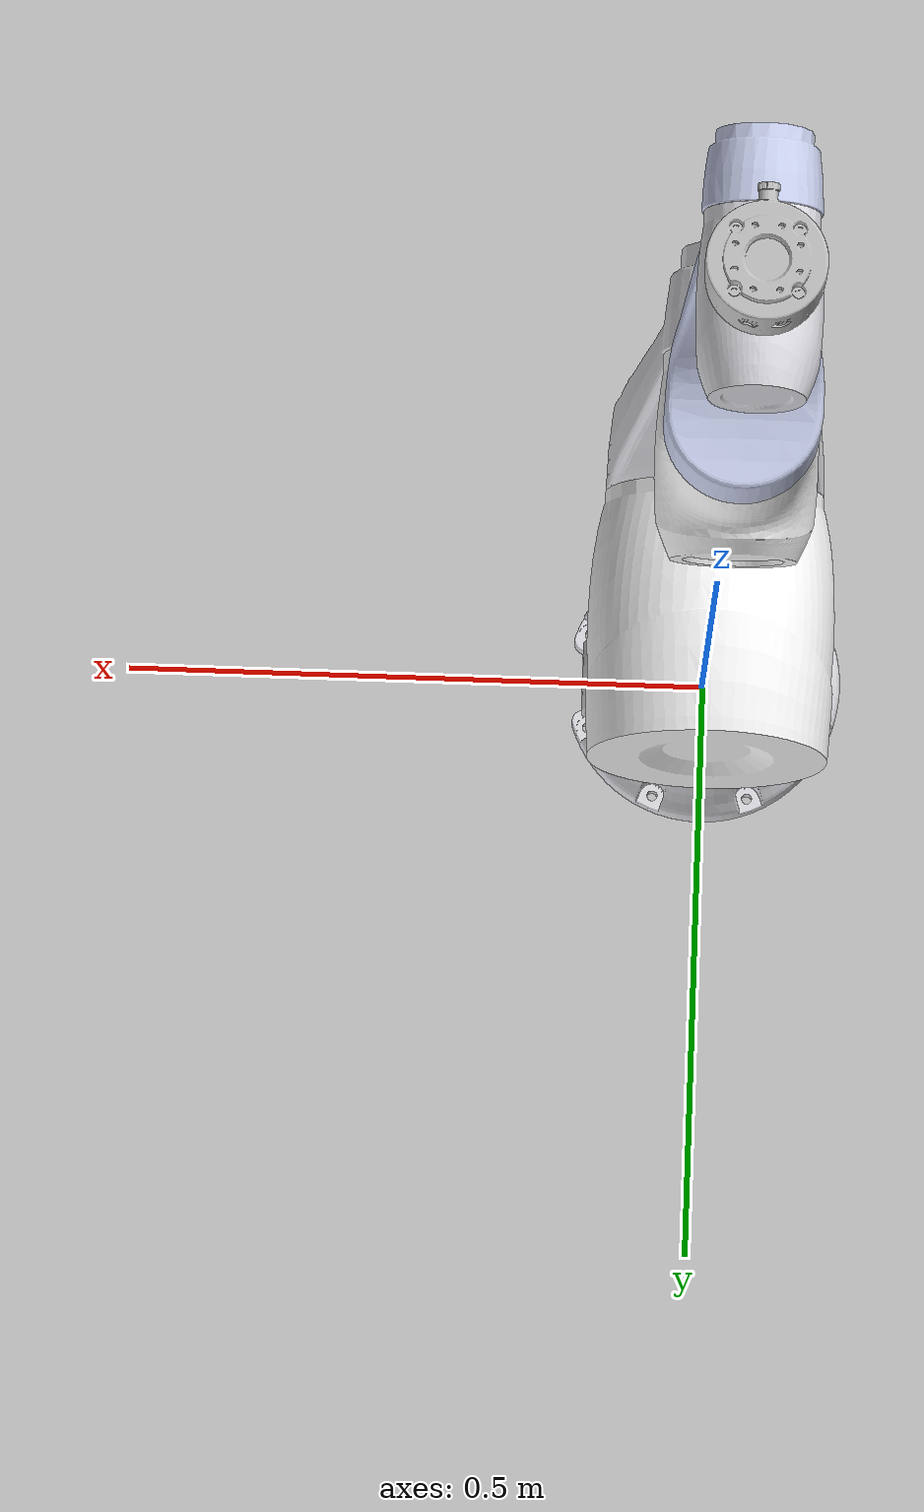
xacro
<?xml version="1.0"?>

<robot name="E15" xmlns:xacro="http://wiki.ros.org/xacro">

  <xacro:arg name="use_real_hardware" default="true" />
  <xacro:arg name="use_fake_hardware" default="false" />

  <!-- Load TRANSMISSION file: -->
  <xacro:include filename="$(find elfin15_ros2_gazebo)/urdf/elfin15_transmission.xacro" />
  <!-- Load GAZEBO/ROS2_CONTROL file: -->
  <xacro:include filename="$(find elfin15_ros2_gazebo)/urdf/elfin15_gazebo.xacro" />

  <xacro:property name="PI" value="3.1415926535897931"/>

  <xacro:property name="density" value="3.09"/>

    <!-- TRANSMISSION: -->
    <xacro:elfin15_transmission />
    <!-- GAZEBO - ROS2_CONTROL: -->
    <xacro:elfin15_gazebo
    use_real_hardware="$(arg use_real_hardware)"
    use_fake_hardware="$(arg use_fake_hardware)"/>

  <link name="world" />

  <joint name="world_base" type="fixed">
    <origin
      xyz="0 0 0"
      rpy="0 0 0" />
    <parent
      link="world" />
    <child
      link="elfin_base_link" />
  </joint>

  <link name="elfin_base_link" />

  <joint name="elfin_base_joint" type="fixed">
    <origin
      xyz="0 0 0"
      rpy="0 0 0" />
    <parent
      link="elfin_base_link" />
    <child
      link="elfin_base" />
  </joint>

 <link
    name="elfin_base">
    <inertial>
      <origin
        xyz="-0.00137018130408533 -2.08409607078139E-06 0.0376538014243397"
        rpy="0 0 0" />
      <mass
        value="2.70257461902285" />
      <inertia
        ixx="0.00938125784352759"
        ixy="-3.1887671545475E-09"
        ixz="-6.8867614840487E-05"
        iyy="0.00898645591278108"
        iyz="-1.99352142230335E-07"
        izz="0.015708544428067" />
    </inertial>
    <visual>
      <origin
        xyz="0 0 0"
        rpy="0 0 0" />
      <geometry>
        <mesh
          filename="file://$(find elfin_description)/meshes/elfin15/elfin_base.STL" />
      </geometry>
      <material
        name="">
        <color
          rgba="0.866666666666667 0.866666666666667 0.890196078431372 1" />
      </material>
    </visual>
    <collision>
      <origin
        xyz="0 0 0"
        rpy="0 0 0" />
      <geometry>
        <mesh
          filename="file://$(find elfin_description)/meshes/elfin15/elfin_base.STL" />
      </geometry>
    </collision>
  </link>
  <link
    name="elfin_link1">
    <inertial>
      <origin
        xyz="8.16871679225712E-06 -0.00327076216928575 -0.0357443582073996"
        rpy="0 0 0" />
      <mass
        value="9.72548992374063" />
      <inertia
        ixx="0.0877898222410778"
        ixy="7.51166191337628E-06"
        ixz="-1.02593778354047E-05"
        iyy="0.0787662782449541"
        iyz="0.00190236579914971"
        izz="0.0591572039539081" />
    </inertial>
    <visual>
      <origin
        xyz="0 0 0"
        rpy="0 0 0" />
      <geometry>
        <mesh
          filename="file://$(find elfin_description)/meshes/elfin15/elfin_link1.STL" />
      </geometry>
      <material
        name="">
        <color
          rgba="1 1 1 1" />
      </material>
    </visual>
    <collision>
      <origin
        xyz="0 0 0"
        rpy="0 0 0" />
      <geometry>
        <mesh
          filename="file://$(find elfin_description)/meshes/elfin15/elfin_link1.STL" />
      </geometry>
    </collision>
  </link>
  <joint
    name="elfin_joint1"
    type="revolute">
    <origin
      xyz="0 0 0.262"
      rpy="0 0 0" />
    <parent
      link="elfin_base" />
    <child
      link="elfin_link1" />
    <axis
      xyz="0 0 1" />
    <limit
      lower="-3.14"
      upper="3.14"
      effort="420"
      velocity="1.57" />
  </joint>
  <link
    name="elfin_link2">
    <inertial>
      <origin
        xyz="1.9322796757489E-05 0.292090106394198 0.154041257842535"
        rpy="0 0 0" />
      <mass
        value="9.54890458234143" />
      <inertia
        ixx="0.589316783120317"
        ixy="-5.67663608156346E-05"
        ixz="-4.92933877201573E-06"
        iyy="0.0224325491073289"
        iyz="0.0314559548025455"
        izz="0.596074459786394" />
    </inertial>
    <visual>
      <origin
        xyz="0 0 0"
        rpy="0 0 0" />
      <geometry>
        <mesh
          filename="file://$(find elfin_description)/meshes/elfin15/elfin_link2.STL" />
      </geometry>
      <material
        name="">
        <color
          rgba="0.890196078431372 0.890196078431372 0.913725490196078 1" />
      </material>
    </visual>
    <collision>
      <origin
        xyz="0 0 0"
        rpy="0 0 0" />
      <geometry>
        <mesh
          filename="file://$(find elfin_description)/meshes/elfin15/elfin_link2.STL" />
      </geometry>
    </collision>
  </link>
  <joint
    name="elfin_joint2"
    type="revolute">
    <origin
      xyz="0 0 0"
      rpy="1.5708 0 0" />
    <parent
      link="elfin_link1" />
    <child
      link="elfin_link2" />
    <axis
      xyz="0 0 1" />
    <limit
      lower="-2.35"
      upper="2.35"
      effort="420"
      velocity="1.57" />
  </joint>
  <link
    name="elfin_link3">
    <inertial>
      <origin
        xyz="0.0361016983818296 -3.38362974484633E-06 -0.00436863890994984"
        rpy="0 0 0" />
      <mass
        value="2.91695075996986" />
      <inertia
        ixx="0.00742981276706272"
        ixy="4.86606934151244E-07"
        ixz="-0.00053693424418515"
        iyy="0.0135717990039811"
        iyz="-2.96883650370105E-07"
        izz="0.0118099746880734" />
    </inertial>
    <visual>
      <origin
        xyz="0 0 0"
        rpy="0 0 0" />
      <geometry>
        <mesh
          filename="file://$(find elfin_description)/meshes/elfin15/elfin_link3.STL" />
      </geometry>
      <material
        name="">
        <color
          rgba="1 1 1 1" />
      </material>
    </visual>
    <collision>
      <origin
        xyz="0 0 0"
        rpy="0 0 0" />
      <geometry>
        <mesh
          filename="file://$(find elfin_description)/meshes/elfin15/elfin_link3.STL" />
      </geometry>
    </collision>
  </link>
  <joint
    name="elfin_joint3"
    type="revolute">
    <origin
      xyz="0 0.73 0"
      rpy="3.1416 0 1.5708" />
    <parent
      link="elfin_link2" />
    <child
      link="elfin_link3" />
    <axis
      xyz="0 0 1" />
    <limit
      lower="-2.61"
      upper="2.61"
      effort="200"
      velocity="1.57" />
  </joint>
  <link
    name="elfin_link4">
    <inertial>
      <origin
        xyz="3.96882664917223E-05 -0.0650155012932467 0.320832871798224"
        rpy="0 0 0" />
      <mass
        value="2.82013622854974" />
      <inertia
        ixx="0.0599767754983284"
        ixy="3.79711278862776E-06"
        ixz="-1.98444520882357E-05"
        iyy="0.055825005713191"
        iyz="0.0126917031165986"
        izz="0.0079193539729856" />
    </inertial>
    <visual>
      <origin
        xyz="0 0 0"
        rpy="0 0 0" />
      <geometry>
        <mesh
          filename="file://$(find elfin_description)/meshes/elfin15/elfin_link4.STL" />
      </geometry>
      <material
        name="">
        <color
          rgba="0.792156862745098 0.819607843137255 0.933333333333333 1" />
      </material>
    </visual>
    <collision>
      <origin
        xyz="0 0 0"
        rpy="0 0 0" />
      <geometry>
        <mesh
          filename="file://$(find elfin_description)/meshes/elfin15/elfin_link4.STL" />
      </geometry>
    </collision>
  </link>
  <joint
    name="elfin_joint4"
    type="revolute">
    <origin
      xyz="0 0 0"
      rpy="1.5708 0 1.5708" />
    <parent
      link="elfin_link3" />
    <child
      link="elfin_link4" />
    <axis
      xyz="0 0 1" />
    <limit
      lower="-3.14"
      upper="3.14"
      effort="200"
      velocity="1.57" />
  </joint>
  <link
    name="elfin_link5">
    <inertial>
      <origin
        xyz="-7.13592588147179E-06 0.0250238965255321 -0.00249029500068249"
        rpy="0 0 0" />
      <mass
        value="1.25663090248721" />
      <inertia
        ixx="0.00349957647668621"
        ixy="2.50320892962179E-07"
        ixz="4.75533746465038E-07"
        iyy="0.00202568589371655"
        iyz="-9.97554673070372E-05"
        izz="0.00273058830542026" />
    </inertial>
    <visual>
      <origin
        xyz="0 0 0"
        rpy="0 0 0" />
      <geometry>
        <mesh
          filename="file://$(find elfin_description)/meshes/elfin15/elfin_link5.STL" />
      </geometry>
      <material
        name="">
        <color
          rgba="0.890196078431372 0.890196078431372 0.913725490196078 1" />
      </material>
    </visual>
    <collision>
      <origin
        xyz="0 0 0"
        rpy="0 0 0" />
      <geometry>
        <mesh
          filename="file://$(find elfin_description)/meshes/elfin15/elfin_link5.STL" />
      </geometry>
    </collision>
  </link>
  <joint
    name="elfin_joint5"
    type="revolute">
    <origin
      xyz="0 0 0.57"
      rpy="1.5708 0 3.1416" />
    <parent
      link="elfin_link4" />
    <child
      link="elfin_link5" />
    <axis
      xyz="0 0 1" />
    <limit
      lower="-2.56"
      upper="2.56"
      effort="69"
      velocity="1.57" />
  </joint>
  <link
    name="elfin_link6">
    <inertial>
      <origin
        xyz="5.80862976798685E-06 -0.000263099303701575 0.140588330549588"
        rpy="0 0 0" />
      <mass
        value="0.340445821267154" />
      <inertia
        ixx="0.000174302732753541"
        ixy="-1.36563776666256E-08"
        ixz="2.64383795850182E-08"
        iyy="0.000178213326580043"
        iyz="-6.34435462617436E-08"
        izz="0.000299299639534556" />
    </inertial>
    <visual>
      <origin
        xyz="0 0 0"
        rpy="0 0 0" />
      <geometry>
        <mesh
          filename="file://$(find elfin_description)/meshes/elfin15/elfin_link6.STL" />
      </geometry>
      <material
        name="">
        <color
          rgba="0.752941176470588 0.752941176470588 0.752941176470588 1" />
      </material>
    </visual>
    <collision>
      <origin
        xyz="0 0 0"
        rpy="0 0 0" />
      <geometry>
        <mesh
          filename="file://$(find elfin_description)/meshes/elfin15/elfin_link6.STL" />
      </geometry>
    </collision>
  </link>
  <joint
    name="elfin_joint6"
    type="revolute">
    <origin
      xyz="0 0 0"
      rpy="1.5708 0 3.1416" />
    <parent
      link="elfin_link5" />
    <child
      link="elfin_link6" />
    <axis
      xyz="0 0 1" />
    <limit
      lower="-3.14"
      upper="3.14"
      effort="69"
      velocity="1.57"/>
  </joint>
  <link
    name="elfin_end_link"/>
  <joint
    name="elfin_end_joint"
    type="fixed">
    <origin
      xyz="0 0 0.1735"
      rpy="0 0 0" />
    <parent
      link="elfin_link6" />
    <child
      link="elfin_end_link" />
    <axis
      xyz="0 0 0" />
  </joint>

  <link name="elfin_dummy_gripper"/>

  <joint name="elfin_dummy_joint" type="fixed">
    <origin
      xyz="0 0.109 0"
      rpy="-1.5708 1.5708 0" />
    <parent
      link="elfin_link6" />
    <child
      link="elfin_dummy_gripper" />
  </joint>

</robot>
